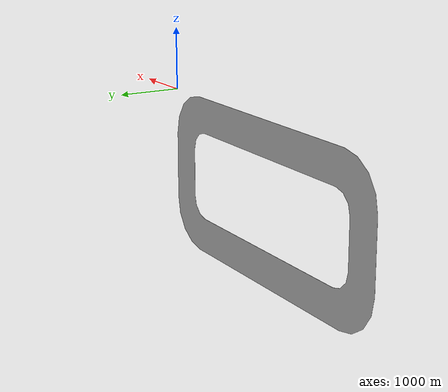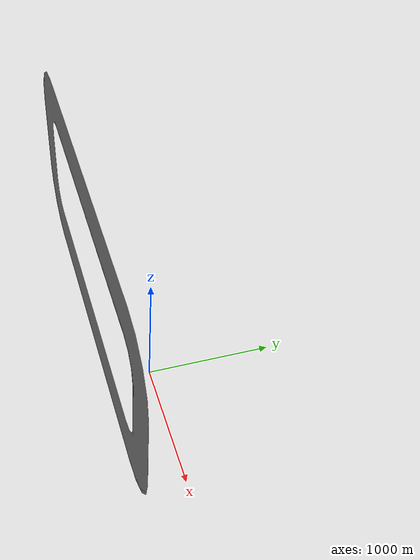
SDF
<?xml version="1.0" ?>
<sdf version="1.6">
  <model name="track">
    <static>true</static>
    <link name="link">
      <visual name="visual">
        <geometry>
          <mesh>
            <uri>./meshes/track.stl</uri>
            <scale>0.4 0.4 0.4</scale>
          </mesh>
        </geometry>
      </visual>

      <collision name="collision">
        <geometry>
          <mesh>
            <uri>./meshes/track.stl</uri>
            <scale>0.4 0.4 0.4</scale>
          </mesh>
        </geometry>
      </collision>
    </link>
  </model>
</sdf>
